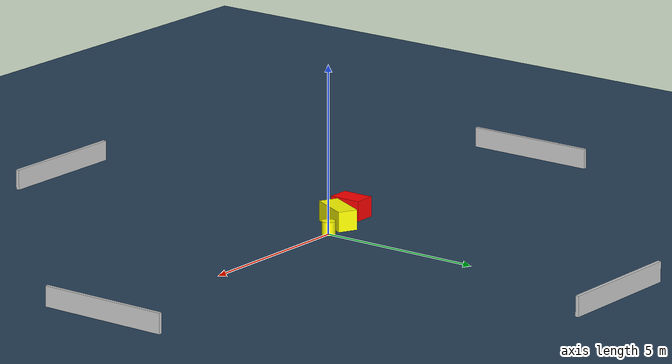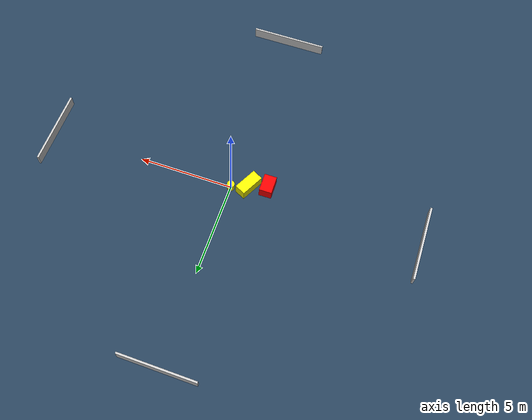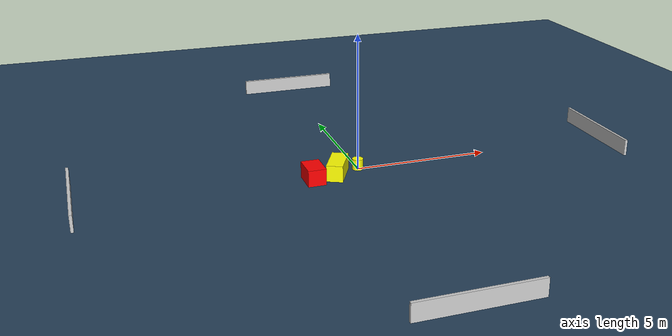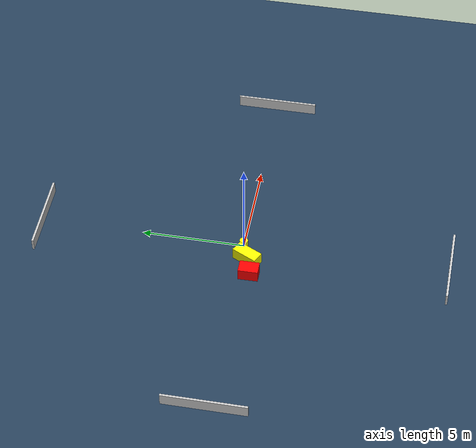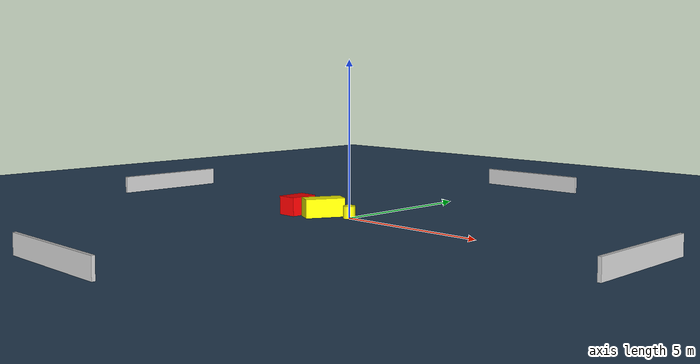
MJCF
<?xml version="1.0" ?>
<mujoco model="generated_environment">
  <option timestep="0.01" integrator="RK4" cone="elliptic"/>
  <default>
    <geom density="1"/>
  </default>
  <asset>
    <texture builtin="gradient" height="3072" name="skybox" rgb1="0.3 0.5 0.7" rgb2="0 0 0" type="skybox" width="512"/>
    <texture builtin="checker" height="300" name="groundplane" rgb1="0.2 0.3 0.4" rgb2="0.1 0.2 0.3" type="2d" width="300"/>
    <material name="groundplane" reflectance="0.2" texrepeat="5 5" texture="groundplane"/>
  </asset>
  <worldbody>
    <light dir="0 0 -1" directional="true" pos="0 0 1.5"/>
    <geom condim="3" friction="0.5 0.005 0.001" material="groundplane" name="floor" pos="0 0 0" size="0 0 0.05" type="plane"/>
    <body name="walls">
      <geom name="wall_1" condim="4" pos="-10.0 0.0 0.3" rgba="0.800000011920929 0.800000011920929 0.800000011920929 1.0" size="0.05 2.0 0.3" type="box"/>
      <geom name="wall_2" condim="4" pos="10.0 0.0 0.3" rgba="0.800000011920929 0.800000011920929 0.800000011920929 1.0" size="0.05 2.0 0.3" type="box"/>
      <geom name="wall_3" condim="4" pos="0.0 -10.0 0.3" rgba="0.800000011920929 0.800000011920929 0.800000011920929 1.0" size="2.0 0.05 0.3" type="box"/>
      <geom name="wall_4" condim="4" pos="0.0 10.0 0.3" rgba="0.800000011920929 0.800000011920929 0.800000011920929 1.0" size="2.0 0.05 0.3" type="box"/>
    </body>
    <body name="robot">
      <joint name="joint_x" type="slide" pos="0 0 0" axis="1 0 0"/>
      <joint name="joint_y" type="slide" pos="0 0 0" axis="0 1 0"/>
      <geom name="robot" type="cylinder" pos="0.0 0.0 0.2" size="0.2 0.2 0.0" mass="5.0" friction="1.0 0.005 0.0001" condim="4" rgba="1.0 1.0 0.0 1.0"/>
    </body>
    <body name="obstacle_1_movable">
      <geom name="obstacle_1_movable" condim="4" pos="-0.867083292478405 -0.3127982278420074 0.3" euler="0 0 333.19559544040266" friction="0.0 0.005 0.001" rgba="1.0 1.0 0.0 1.0" size="0.2963637541039768 0.6458190224969951 0.3" type="box" mass="0.1"/>
      <joint type="free"/>
    </body>
    <body name="obstacle_2_static">
      <geom name="obstacle_2_static" condim="4" pos="-1.8230588420572758 -0.5626408924465635 0.3" euler="0 0 0.4865366878675337" friction="0.0 0.005 0.001" rgba="1.0 0.0 0.0 1.0" size="0.32889750326044764 0.48019591921945187 0.3" type="box"/>
    </body>
  </worldbody>
  <actuator>
    <motor name="actuator_x" joint="joint_x" gear="1" ctrlrange="-1 1"/>
    <motor name="actuator_y" joint="joint_y" gear="1" ctrlrange="-1 1"/>
  </actuator>
</mujoco>
